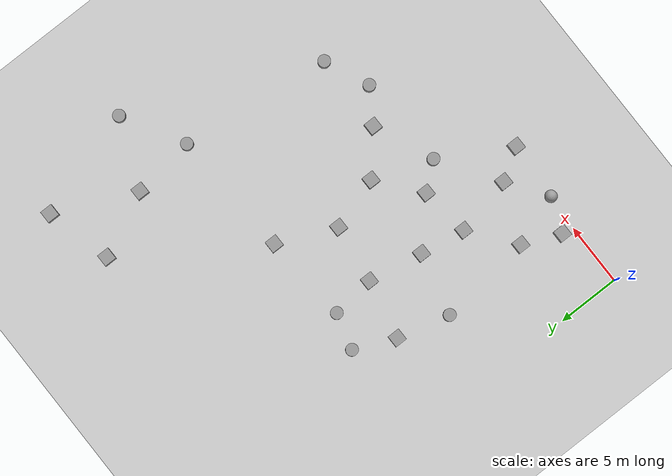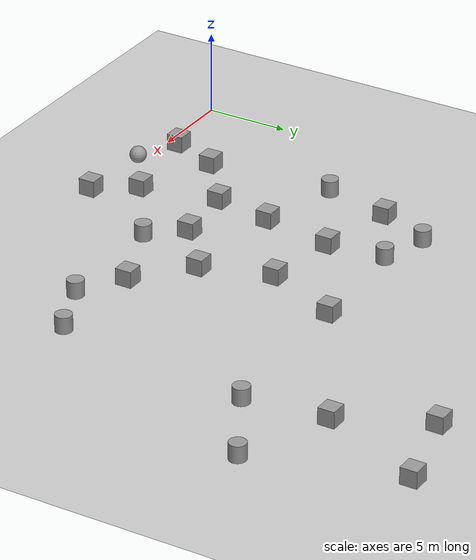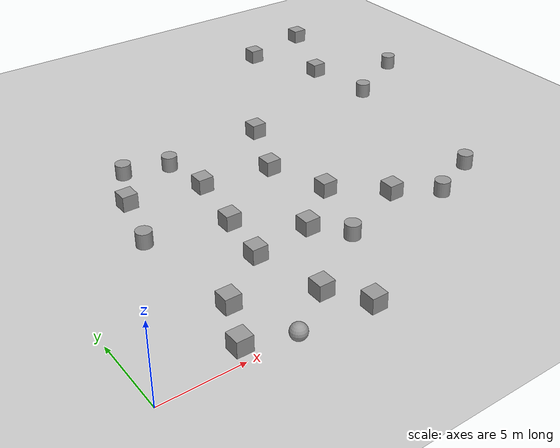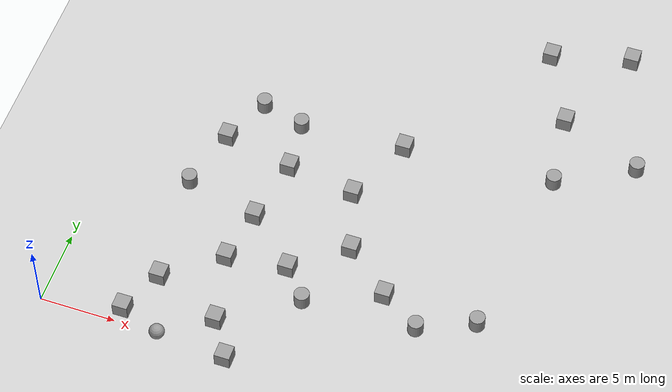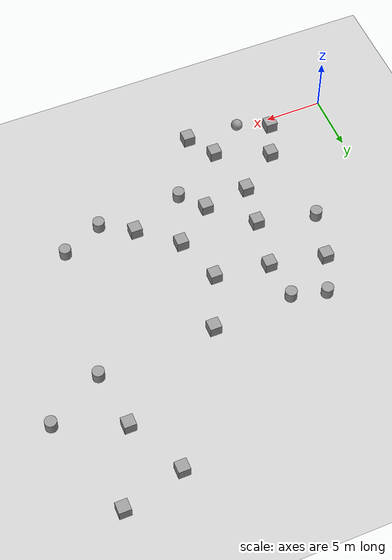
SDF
<sdf version="1.6">
 <world name="default">
  <model name="ground_plane">
   <static>1</static>
   <link name="link">
    <collision name="collision">
     <geometry><plane><normal>0 0 1</normal><size>100 100</size></plane></geometry>
     <surface><friction><ode><mu>100</mu><mu2>50</mu2></ode></friction></surface>
    </collision>
    <visual name="visual">
     <cast_shadows>0</cast_shadows>
     <geometry><plane><normal>0 0 1</normal><size>100 100</size></plane></geometry>
     <material>
      <script><uri>file://media/materials/scripts/gazebo.material</uri><name>Gazebo/Grey</name></script>
     </material>
    </visual>
   </link>
  </model>
  <model name="unit_box">
   <pose>6.48262 3.92861 0.499995 0 1e-05 7.9e-05</pose>
   <link name="link">
    <inertial>
     <mass>1</mass>
     <inertia>
      <ixx>0.166667</ixx>
      <ixy>0</ixy>
      <ixz>0</ixz>
      <iyy>0.166667</iyy>
      <iyz>0</iyz>
      <izz>0.166667</izz>
     </inertia>
    </inertial>
    <collision name="collision"><geometry><box><size>1 1 1</size></box></geometry></collision>
    <visual name="visual">
     <geometry><box><size>1 1 1</size></box></geometry>
     <material>
      <script><name>Gazebo/Grey</name><uri>file://media/materials/scripts/gazebo.material</uri></script>
     </material>
    </visual>
   </link>
  </model>
  <model name="unit_cylinder_0">
   <pose>15.6146 5.09545 0.499993 -3e-06 -1e-06 -0</pose>
   <link name="link">
    <inertial>
     <mass>1</mass>
     <inertia><ixx>0.145833</ixx><ixy>0</ixy><ixz>0</ixz><iyy>0.145833</iyy><iyz>0</iyz><izz>0.125</izz></inertia>
    </inertial>
    <collision name="collision">
     <geometry><cylinder><radius>0.5</radius><length>1</length></cylinder></geometry>
    </collision>
    <visual name="visual">
     <geometry><cylinder><radius>0.5</radius><length>1</length></cylinder></geometry>
     <material>
      <script><name>Gazebo/Grey</name><uri>file://media/materials/scripts/gazebo.material</uri></script>
     </material>
    </visual>
   </link>
  </model>
  <model name="unit_box_0">
   <pose>12.523 -0.404641 0.499995 0 1e-05 0</pose>
   <link name="link">
    <inertial>
     <mass>1</mass>
     <inertia>
      <ixx>0.166667</ixx>
      <ixy>0</ixy>
      <ixz>0</ixz>
      <iyy>0.166667</iyy>
      <iyz>0</iyz>
      <izz>0.166667</izz>
     </inertia>
    </inertial>
    <collision name="collision"><geometry><box><size>1 1 1</size></box></geometry></collision>
    <visual name="visual">
     <geometry><box><size>1 1 1</size></box></geometry>
     <material>
      <script><name>Gazebo/Grey</name><uri>file://media/materials/scripts/gazebo.material</uri></script>
     </material>
    </visual>
   </link>
  </model>
  <model name="unit_box_4">
   <pose>30.2263 30.3536 0.499995 1e-05 -0 0</pose>
   <link name="link">
    <inertial>
     <mass>1</mass>
     <inertia>
      <ixx>0.166667</ixx>
      <ixy>0</ixy>
      <ixz>0</ixz>
      <iyy>0.166667</iyy>
      <iyz>0</iyz>
      <izz>0.166667</izz>
     </inertia>
    </inertial>
    <collision name="collision"><geometry><box><size>1 1 1</size></box></geometry></collision>
    <visual name="visual">
     <geometry><box><size>1 1 1</size></box></geometry>
     <material>
      <script><name>Gazebo/Grey</name><uri>file://media/materials/scripts/gazebo.material</uri></script>
     </material>
    </visual>
   </link>
  </model>
  <model name="unit_box_5">
   <pose>27.38 23.9767 0.499995 0 1e-05 0</pose>
   <link name="link">
    <inertial>
     <mass>1</mass>
     <inertia>
      <ixx>0.166667</ixx>
      <ixy>0</ixy>
      <ixz>0</ixz>
      <iyy>0.166667</iyy>
      <iyz>0</iyz>
      <izz>0.166667</izz>
     </inertia>
    </inertial>
    <collision name="collision"><geometry><box><size>1 1 1</size></box></geometry></collision>
    <visual name="visual">
     <geometry><box><size>1 1 1</size></box></geometry>
     <material>
      <script><name>Gazebo/Grey</name><uri>file://media/materials/scripts/gazebo.material</uri></script>
     </material>
    </visual>
   </link>
  </model>
  <model name="unit_cylinder_1">
   <pose>32.8418 21.7156 0.499997 3e-06 -4e-06 0</pose>
   <link name="link">
    <inertial>
     <mass>1</mass>
     <inertia><ixx>0.145833</ixx><ixy>0</ixy><ixz>0</ixz><iyy>0.145833</iyy><iyz>0</iyz><izz>0.125</izz></inertia>
    </inertial>
    <collision name="collision">
     <geometry><cylinder><radius>0.5</radius><length>1</length></cylinder></geometry>
    </collision>
    <visual name="visual">
     <geometry><cylinder><radius>0.5</radius><length>1</length></cylinder></geometry>
     <material>
      <script><name>Gazebo/Grey</name><uri>file://media/materials/scripts/gazebo.material</uri></script>
     </material>
    </visual>
   </link>
  </model>
  <model name="unit_box_6">
   <pose>11 1.99999 0.499995 0 1e-05 0</pose>
   <link name="link">
    <inertial>
     <mass>1</mass>
     <inertia>
      <ixx>0.166667</ixx>
      <ixy>0</ixy>
      <ixz>0</ixz>
      <iyy>0.166667</iyy>
      <iyz>0</iyz>
      <izz>0.166667</izz>
     </inertia>
    </inertial>
    <collision name="collision"><geometry><box><size>1 1 1</size></box></geometry></collision>
    <visual name="visual">
     <geometry><box><size>1 1 1</size></box></geometry>
     <material>
      <script><name>Gazebo/Grey</name><uri>file://media/materials/scripts/gazebo.material</uri></script>
     </material>
    </visual>
   </link>
  </model>
  <model name="unit_box_7">
   <pose>25 29 0.499995 1e-05 -0 0</pose>
   <link name="link">
    <inertial>
     <mass>1</mass>
     <inertia>
      <ixx>0.166667</ixx>
      <ixy>0</ixy>
      <ixz>0</ixz>
      <iyy>0.166667</iyy>
      <iyz>0</iyz>
      <izz>0.166667</izz>
     </inertia>
    </inertial>
    <collision name="collision"><geometry><box><size>1 1 1</size></box></geometry></collision>
    <visual name="visual">
     <geometry><box><size>1 1 1</size></box></geometry>
     <material>
      <script><name>Gazebo/Grey</name><uri>file://media/materials/scripts/gazebo.material</uri></script>
     </material>
    </visual>
   </link>
  </model>
  <model name="unit_box_8">
   <pose>18 18.4762 0.499995 0 1e-05 0</pose>
   <link name="link">
    <inertial>
     <mass>1</mass>
     <inertia>
      <ixx>0.166667</ixx>
      <ixy>0</ixy>
      <ixz>0</ixz>
      <iyy>0.166667</iyy>
      <iyz>0</iyz>
      <izz>0.166667</izz>
     </inertia>
    </inertial>
    <collision name="collision"><geometry><box><size>1 1 1</size></box></geometry></collision>
    <visual name="visual">
     <geometry><box><size>1 1 1</size></box></geometry>
     <material>
      <script><name>Gazebo/Grey</name><uri>file://media/materials/scripts/gazebo.material</uri></script>
     </material>
    </visual>
   </link>
  </model>
  <model name="unit_cylinder_2">
   <pose>23 5.43729 0.499997 3e-06 -4e-06 0</pose>
   <link name="link">
    <inertial>
     <mass>1</mass>
     <inertia><ixx>0.145833</ixx><ixy>0</ixy><ixz>0</ixz><iyy>0.145833</iyy><iyz>0</iyz><izz>0.125</izz></inertia>
    </inertial>
    <collision name="collision">
     <geometry><cylinder><radius>0.5</radius><length>1</length></cylinder></geometry>
    </collision>
    <visual name="visual">
     <geometry><cylinder><radius>0.5</radius><length>1</length></cylinder></geometry>
     <material>
      <script><name>Gazebo/Grey</name><uri>file://media/materials/scripts/gazebo.material</uri></script>
     </material>
    </visual>
   </link>
  </model>
  <model name="unit_box_14">
   <pose>5.20559 0.944336 0.499995 0 1e-05 0</pose>
   <link name="link">
    <inertial>
     <mass>1</mass>
     <inertia>
      <ixx>0.166667</ixx>
      <ixy>0</ixy>
      <ixz>0</ixz>
      <iyy>0.166667</iyy>
      <iyz>0</iyz>
      <izz>0.166667</izz>
     </inertia>
    </inertial>
    <collision name="collision"><geometry><box><size>1 1 1</size></box></geometry></collision>
    <visual name="visual">
     <geometry><box><size>1 1 1</size></box></geometry>
     <material>
      <script><name>Gazebo/Grey</name><uri>file://media/materials/scripts/gazebo.material</uri></script>
     </material>
    </visual>
   </link>
  </model>
  <model name="unit_cylinder_4">
   <pose>26.5227 7 0.499994 -3e-06 -1e-06 -0</pose>
   <link name="link">
    <inertial>
     <mass>1</mass>
     <inertia><ixx>0.145833</ixx><ixy>0</ixy><ixz>0</ixz><iyy>0.145833</iyy><iyz>0</iyz><izz>0.125</izz></inertia>
    </inertial>
    <collision name="collision">
     <geometry><cylinder><radius>0.5</radius><length>1</length></cylinder></geometry>
    </collision>
    <visual name="visual">
     <geometry><cylinder><radius>0.5</radius><length>1</length></cylinder></geometry>
     <material>
      <script><name>Gazebo/Grey</name><uri>file://media/materials/scripts/gazebo.material</uri></script>
     </material>
    </visual>
   </link>
  </model>
  <model name="unit_cylinder_5">
   <pose>28 19 0.499996 3e-06 1e-06 -0</pose>
   <link name="link">
    <inertial>
     <mass>1</mass>
     <inertia><ixx>0.145833</ixx><ixy>0</ixy><ixz>0</ixz><iyy>0.145833</iyy><iyz>0</iyz><izz>0.125</izz></inertia>
    </inertial>
    <collision name="collision">
     <geometry><cylinder><radius>0.5</radius><length>1</length></cylinder></geometry>
    </collision>
    <visual name="visual">
     <geometry><cylinder><radius>0.5</radius><length>1</length></cylinder></geometry>
     <material>
      <script><name>Gazebo/Grey</name><uri>file://media/materials/scripts/gazebo.material</uri></script>
     </material>
    </visual>
   </link>
  </model>
  <model name="unit_cylinder_6">
   <pose>11 18 0.499996 3e-06 1e-06 -0</pose>
   <link name="link">
    <inertial>
     <mass>1</mass>
     <inertia><ixx>0.145833</ixx><ixy>0</ixy><ixz>0</ixz><iyy>0.145833</iyy><iyz>0</iyz><izz>0.125</izz></inertia>
    </inertial>
    <collision name="collision">
     <geometry><cylinder><radius>0.5</radius><length>1</length></cylinder></geometry>
    </collision>
    <visual name="visual">
     <geometry><cylinder><radius>0.5</radius><length>1</length></cylinder></geometry>
     <material>
      <script><name>Gazebo/Grey</name><uri>file://media/materials/scripts/gazebo.material</uri></script>
     </material>
    </visual>
   </link>
  </model>
  <model name="unit_cylinder_8">
   <pose>8.12361 18.8088 0.499993 -3e-06 -2e-06 0</pose>
   <link name="link">
    <inertial>
     <mass>1</mass>
     <inertia><ixx>0.145833</ixx><ixy>0</ixy><ixz>0</ixz><iyy>0.145833</iyy><iyz>0</iyz><izz>0.125</izz></inertia>
    </inertial>
    <collision name="collision">
     <geometry><cylinder><radius>0.5</radius><length>1</length></cylinder></geometry>
    </collision>
    <visual name="visual">
     <geometry><cylinder><radius>0.5</radius><length>1</length></cylinder></geometry>
     <material>
      <script><name>Gazebo/Grey</name><uri>file://media/materials/scripts/gazebo.material</uri></script>
     </material>
    </visual>
   </link>
  </model>
  <model name="unit_box_21">
   <pose>9.98887 6.63312 0.499995 1e-05 -0 0</pose>
   <link name="link">
    <inertial>
     <mass>1</mass>
     <inertia>
      <ixx>0.166667</ixx>
      <ixy>0</ixy>
      <ixz>0</ixz>
      <iyy>0.166667</iyy>
      <iyz>0</iyz>
      <izz>0.166667</izz>
     </inertia>
    </inertial>
    <collision name="collision"><geometry><box><size>1 1 1</size></box></geometry></collision>
    <visual name="visual">
     <geometry><box><size>1 1 1</size></box></geometry>
     <material>
      <script><name>Gazebo/Grey</name><uri>file://media/materials/scripts/gazebo.material</uri></script>
     </material>
    </visual>
   </link>
  </model>
  <model name="unit_sphere">
   <pose>7.93053 -0.140117 0.5 0 -0 0</pose>
   <link name="link">
    <inertial>
     <mass>1</mass>
     <inertia><ixx>0.1</ixx><ixy>0</ixy><ixz>0</ixz><iyy>0.1</iyy><iyz>0</iyz><izz>0.1</izz></inertia>
    </inertial>
    <collision name="collision"><geometry><sphere><radius>0.5</radius></sphere></geometry></collision>
    <visual name="visual">
     <geometry><sphere><radius>0.5</radius></sphere></geometry>
     <material>
      <script><name>Gazebo/Grey</name><uri>file://media/materials/scripts/gazebo.material</uri></script>
     </material>
    </visual>
   </link>
  </model>
  <model name="unit_box_22">
   <pose>11.389 14.5712 0.5005 -0 -0 -0</pose>
   <link name="link">
    <inertial>
     <mass>1</mass>
     <inertia>
      <ixx>0.166667</ixx>
      <ixy>0</ixy>
      <ixz>0</ixz>
      <iyy>0.166667</iyy>
      <iyz>0</iyz>
      <izz>0.166667</izz>
     </inertia>
    </inertial>
    <collision name="collision"><geometry><box><size>1 1 1</size></box></geometry></collision>
    <visual name="visual">
     <geometry><box><size>1 1 1</size></box></geometry>
     <material>
      <script><name>Gazebo/Grey</name><uri>file://media/materials/scripts/gazebo.material</uri></script>
     </material>
    </visual>
   </link>
  </model>
  <model name="unit_box_24">
   <pose>13.9406 7.11543 0.499995 1e-05 -0 0</pose>
   <link name="link">
    <inertial>
     <mass>1</mass>
     <inertia>
      <ixx>0.166667</ixx>
      <ixy>0</ixy>
      <ixz>0</ixz>
      <iyy>0.166667</iyy>
      <iyz>0</iyz>
      <izz>0.166667</izz>
     </inertia>
    </inertial>
    <collision name="collision"><geometry><box><size>1 1 1</size></box></geometry></collision>
    <visual name="visual">
     <geometry><box><size>1 1 1</size></box></geometry>
     <material>
      <script><name>Gazebo/Grey</name><uri>file://media/materials/scripts/gazebo.material</uri></script>
     </material>
    </visual>
   </link>
  </model>
  <model name="unit_box_25">
   <pose>6.71611 15.5887 0.5005 -0 -0 -0</pose>
   <link name="link">
    <inertial>
     <mass>1</mass>
     <inertia>
      <ixx>0.166667</ixx>
      <ixy>0</ixy>
      <ixz>0</ixz>
      <iyy>0.166667</iyy>
      <iyz>0</iyz>
      <izz>0.166667</izz>
     </inertia>
    </inertial>
    <collision name="collision"><geometry><box><size>1 1 1</size></box></geometry></collision>
    <visual name="visual">
     <geometry><box><size>1 1 1</size></box></geometry>
     <material>
      <script><name>Gazebo/Grey</name><uri>file://media/materials/scripts/gazebo.material</uri></script>
     </material>
    </visual>
   </link>
  </model>
  <model name="unit_cylinder_11">
   <pose>5.63648 11.4139 0.5005 -0 -0 -0.000323</pose>
   <link name="link">
    <inertial>
     <mass>1</mass>
     <inertia><ixx>0.145833</ixx><ixy>0</ixy><ixz>0</ixz><iyy>0.145833</iyy><iyz>0</iyz><izz>0.125</izz></inertia>
    </inertial>
    <collision name="collision">
     <geometry><cylinder><radius>0.5</radius><length>1</length></cylinder></geometry>
    </collision>
    <visual name="visual">
     <geometry><cylinder><radius>0.5</radius><length>1</length></cylinder></geometry>
     <material>
      <script><name>Gazebo/Grey</name><uri>file://media/materials/scripts/gazebo.material</uri></script>
     </material>
    </visual>
   </link>
  </model>
  <model name="unit_box_46">
   <pose>10.587 10.2136 0.5005 -0 -0 -0</pose>
   <link name="link">
    <inertial>
     <mass>1</mass>
     <inertia>
      <ixx>0.166667</ixx>
      <ixy>0</ixy>
      <ixz>0</ixz>
      <iyy>0.166667</iyy>
      <iyz>0</iyz>
      <izz>0.166667</izz>
     </inertia>
    </inertial>
    <collision name="collision"><geometry><box><size>1 1 1</size></box></geometry></collision>
    <visual name="visual">
     <geometry><box><size>1 1 1</size></box></geometry>
     <material>
      <script><name>Gazebo/Grey</name><uri>file://media/materials/scripts/gazebo.material</uri></script>
     </material>
    </visual>
   </link>
  </model>
  <model name="unit_box_47">
   <pose>15.9901 13.8962 0.5005 -0 -0 -0</pose>
   <link name="link">
    <inertial>
     <mass>1</mass>
     <inertia>
      <ixx>0.166667</ixx>
      <ixy>0</ixy>
      <ixz>0</ixz>
      <iyy>0.166667</iyy>
      <iyz>0</iyz>
      <izz>0.166667</izz>
     </inertia>
    </inertial>
    <collision name="collision"><geometry><box><size>1 1 1</size></box></geometry></collision>
    <visual name="visual">
     <geometry><box><size>1 1 1</size></box></geometry>
     <material>
      <script><name>Gazebo/Grey</name><uri>file://media/materials/scripts/gazebo.material</uri></script>
     </material>
    </visual>
   </link>
  </model>
  <model name="unit_box_48">
   <pose>17.2842 9.76814 0.5005 -0 -0 -0</pose>
   <link name="link">
    <inertial>
     <mass>1</mass>
     <inertia>
      <ixx>0.166667</ixx>
      <ixy>0</ixy>
      <ixz>0</ixz>
      <iyy>0.166667</iyy>
      <iyz>0</iyz>
      <izz>0.166667</izz>
     </inertia>
    </inertial>
    <collision name="collision"><geometry><box><size>1 1 1</size></box></geometry></collision>
    <visual name="visual">
     <geometry><box><size>1 1 1</size></box></geometry>
     <material>
      <script><name>Gazebo/Grey</name><uri>file://media/materials/scripts/gazebo.material</uri></script>
     </material>
    </visual>
   </link>
  </model>
  <model name="unit_box_49">
   <pose>20.374 7.13072 0.499995 1e-05 -0 0</pose>
   <link name="link">
    <inertial>
     <mass>1</mass>
     <inertia>
      <ixx>0.166667</ixx>
      <ixy>0</ixy>
      <ixz>0</ixz>
      <iyy>0.166667</iyy>
      <iyz>0</iyz>
      <izz>0.166667</izz>
     </inertia>
    </inertial>
    <collision name="collision"><geometry><box><size>1 1 1</size></box></geometry></collision>
    <visual name="visual">
     <geometry><box><size>1 1 1</size></box></geometry>
     <material>
      <script><name>Gazebo/Grey</name><uri>file://media/materials/scripts/gazebo.material</uri></script>
     </material>
    </visual>
   </link>
  </model>
 </world>
</sdf>
